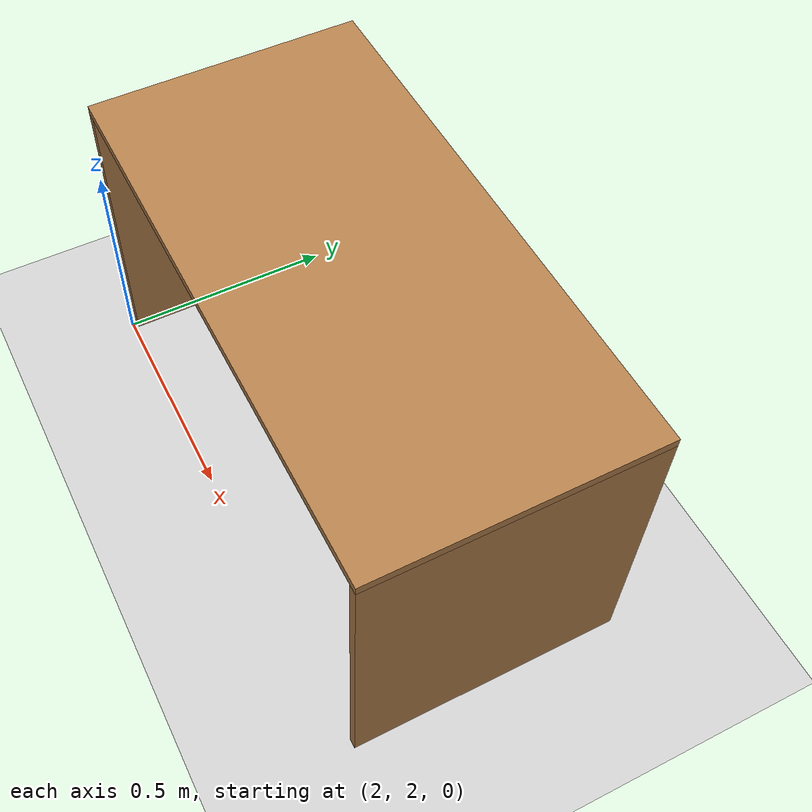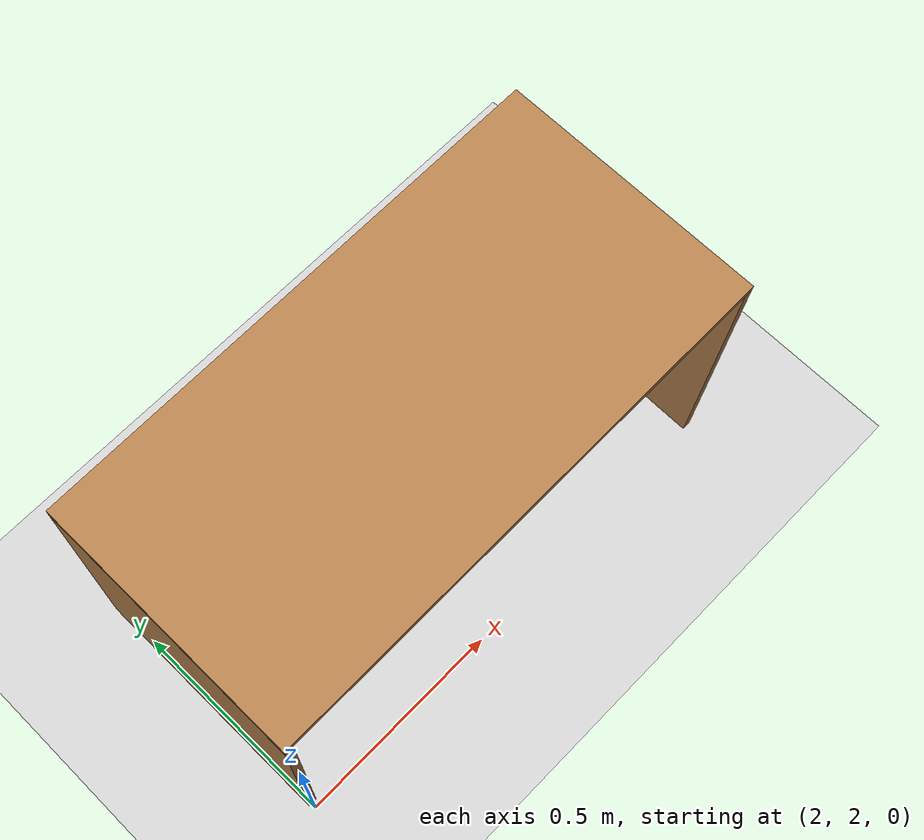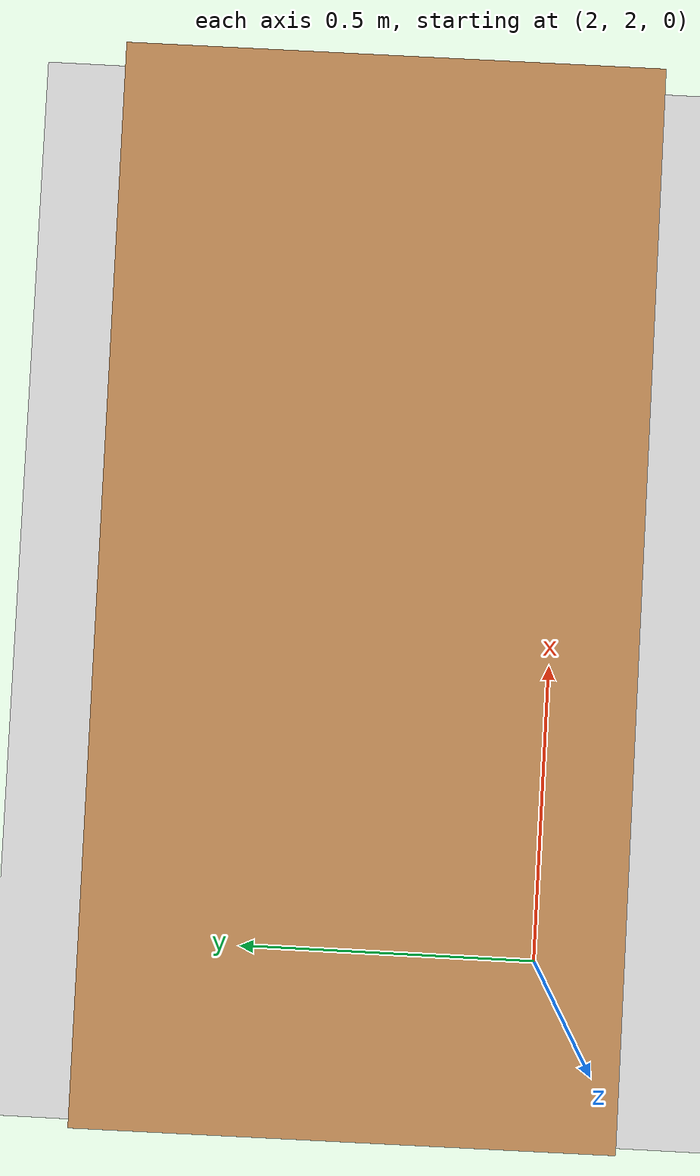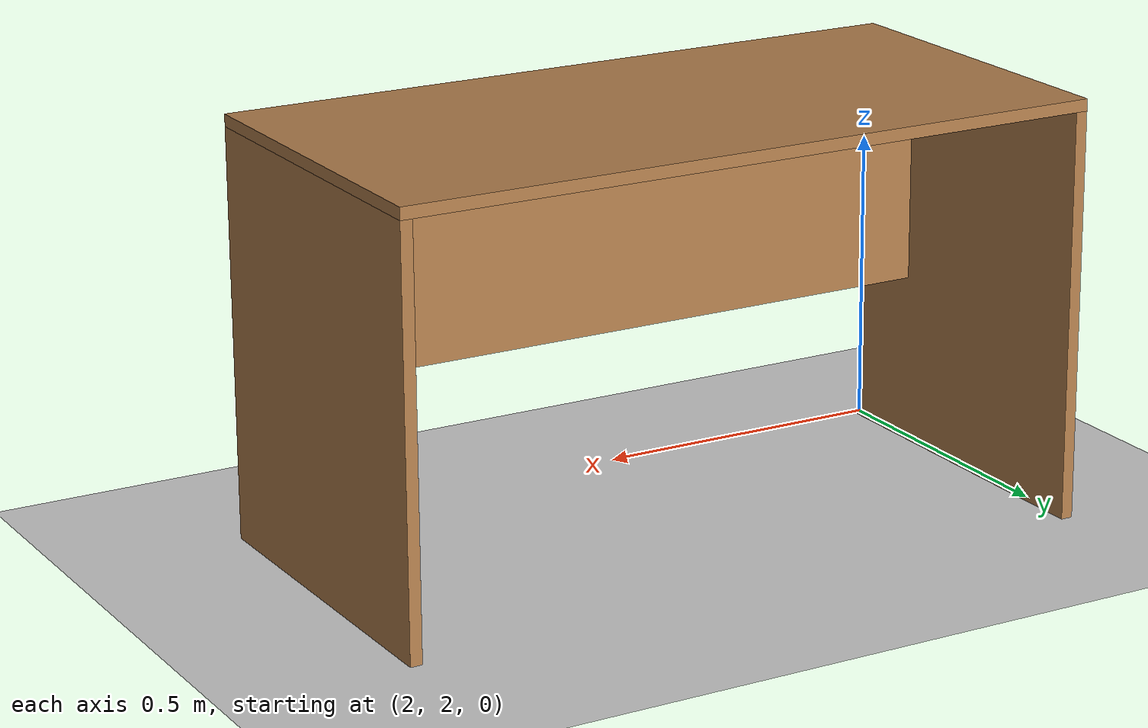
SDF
<sdf version="1.7">
 <world name="default">
  <light name="sun" type="directional">
   <pose>0 0 10 0 -0 0</pose>
   <diffuse>0.8 0.8 0.8 1</diffuse>
   <specular>0.2 0.2 0.2 1</specular>
   <attenuation>
    <range>1000</range>
    <constant>0.9</constant>
    <linear>0.01</linear>
    <quadratic>0.001</quadratic>
   </attenuation>
   <direction>-0.5 0.1 -0.9</direction>
   <spot><inner_angle>0</inner_angle><outer_angle>0</outer_angle><falloff>0</falloff></spot>
  </light>
  <model name="ground_plane">
   <static>1</static>
   <link name="link">
    <collision name="collision">
     <geometry><plane><normal>0 0 1</normal><size>100 100</size></plane></geometry>
     <surface>
      <contact><collide_bitmask>65535</collide_bitmask></contact>
      <friction><ode><mu>100</mu><mu2>50</mu2></ode></friction>
     </surface>
    </collision>
    <visual name="visual">
     <cast_shadows>0</cast_shadows>
     <geometry><plane><normal>0 0 1</normal><size>100 100</size></plane></geometry>
     <material>
      <script><uri>file://media/materials/scripts/gazebo.material</uri><name>Gazebo/Grey</name></script>
     </material>
    </visual>
   </link>
  </model>
  <gravity>0 0 -9.8</gravity>
  <magnetic_field>6e-06 2.3e-05 -4.2e-05</magnetic_field>
  <atmosphere type="adiabatic"/>
  <physics type="ode">
   <max_step_size>0.001</max_step_size>
   <real_time_factor>1</real_time_factor>
   <real_time_update_rate>000</real_time_update_rate>
  </physics>
  <scene><ambient>0.4 0.4 0.4 1</ambient><background>0.7 0.7 0.7 1</background><shadows>1</shadows></scene>
  <spherical_coordinates>
   <surface_model>EARTH_WGS84</surface_model>
   <latitude_deg>0</latitude_deg>
   <longitude_deg>0</longitude_deg>
   <elevation>0</elevation>
   <heading_deg>0</heading_deg>
  </spherical_coordinates>
  <model name="office_desk">
   <link name="link">
    <inertial>
     <mass>10</mass>
     <inertia><ixx>1</ixx><ixy>0</ixy><ixz>0</ixz><iyy>1</iyy><iyz>0</iyz><izz>1</izz></inertia>
    </inertial>
    <visual name="top_board">
     <pose>-0.3 0.6 0.69 0 -0 0</pose>
     <geometry><box><size>0.6 1.2 0.02</size></box></geometry>
     <material>
      <script>
       <uri>model://base_materials/wood/scripts/wood.material</uri>
       <name>base_materials/dark_wood</name>
      </script>
     </material>
     <meta><layer>1</layer></meta>
    </visual>
    <collision name="collision_top_board">
     <pose>-0.3 0.6 0.69 0 -0 0</pose>
     <geometry><box><size>0.6 1.2 0.02</size></box></geometry>
     <surface><contact><collide_bitmask>0x01</collide_bitmask></contact></surface>
    </collision>
    <visual name="left_board">
     <pose>-0.3 0.01 0.34 0 -0 0</pose>
     <geometry><box><size>0.6 0.02 0.68</size></box></geometry>
     <material>
      <script>
       <uri>model://base_materials/wood/scripts/wood.material</uri>
       <name>base_materials/dark_wood</name>
      </script>
     </material>
    </visual>
    <collision name="collision_left_board">
     <pose>-0.3 0.01 0.34 0 -0 0</pose>
     <geometry><box><size>0.6 0.02 0.68</size></box></geometry>
     <surface><contact><collide_bitmask>0x01</collide_bitmask></contact></surface>
    </collision>
    <visual name="right_board">
     <pose>-0.3 1.19 0.34 0 -0 0</pose>
     <geometry><box><size>0.6 0.02 0.68</size></box></geometry>
     <material>
      <script>
       <uri>model://base_materials/wood/scripts/wood.material</uri>
       <name>base_materials/dark_wood</name>
      </script>
     </material>
    </visual>
    <collision name="collision_right_board">
     <pose>-0.3 1.19 0.34 0 -0 0</pose>
     <geometry><box><size>0.6 0.02 0.68</size></box></geometry>
     <surface><contact><collide_bitmask>0x01</collide_bitmask></contact></surface>
    </collision>
    <visual name="center_board">
     <pose>-0.14 0.6 0.49 0 -0 0</pose>
     <geometry><box><size>0.02 1.16 0.4</size></box></geometry>
     <material>
      <script>
       <uri>model://base_materials/wood/scripts/wood.material</uri>
       <name>base_materials/dark_wood</name>
      </script>
     </material>
    </visual>
    <collision name="collision_center_board">
     <pose>-0.14 0.6 0.49 0 -0 0</pose>
     <geometry><box><size>0.02 1.16 0.4</size></box></geometry>
     <surface><contact><collide_bitmask>0x01</collide_bitmask></contact></surface>
    </collision>
    <velocity_decay><linear>0</linear><angular>0</angular></velocity_decay>
   </link>
   <static>1</static>
   <pose>1.99274 2.00988 0 0 0 -1.56766</pose>
  </model>
 </world>
</sdf>
